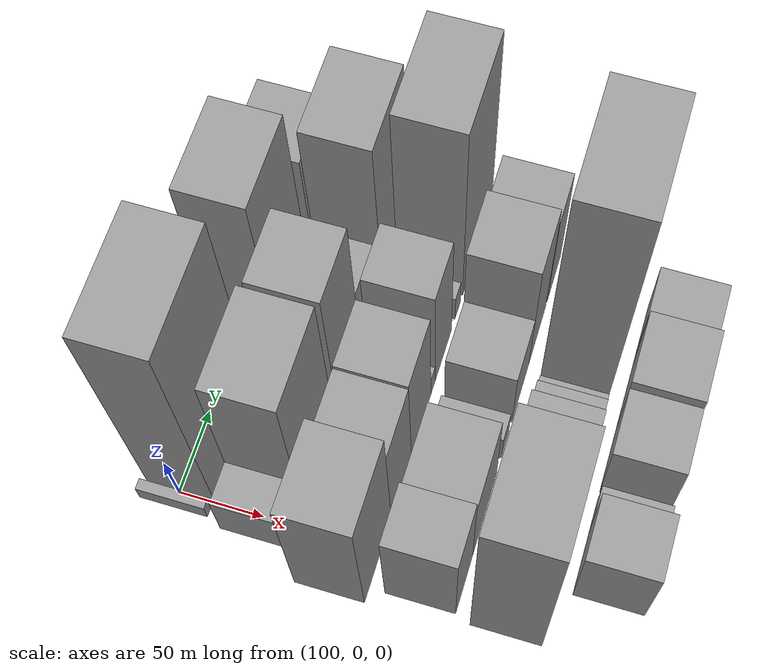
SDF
<sdf version="1.6">
 <world name="default">
  <model name="building_27">
   <static>1</static>
   <pose>100.0000 -5.7224 0 0.000000 0.000000 0.000000</pose>
   <link name="link">
    <pose>0 0 7.50 0 0 0</pose>
    <collision name="collision"><geometry><box><size>40.0000 6.3690 15.0000</size></box></geometry></collision>
    <visual name="visual">
     <cast_shadows>0</cast_shadows>
     <geometry><box><size>40.0000 6.3690 15.0000</size></box></geometry>
     <material>
      <script>
       <uri>model://grey_wall/materials/scripts</uri>
       <uri>model://grey_wall/materials/textures</uri>
       <name>vrc/grey_wall</name>
      </script>
     </material>
    </visual>
   </link>
  </model>
  <model name="building_28">
   <static>1</static>
   <pose>100.0000 36.5928 0 0.000000 0.000000 0.000000</pose>
   <link name="link">
    <pose>0 0 100.50 0 0 0</pose>
    <collision name="collision"><geometry><box><size>40.0000 70.2614 201.0000</size></box></geometry></collision>
    <visual name="visual">
     <cast_shadows>0</cast_shadows>
     <geometry><box><size>40.0000 70.2614 201.0000</size></box></geometry>
     <material>
      <script>
       <uri>model://grey_wall/materials/scripts</uri>
       <uri>model://grey_wall/materials/textures</uri>
       <name>vrc/grey_wall</name>
      </script>
     </material>
    </visual>
   </link>
  </model>
  <model name="building_29">
   <static>1</static>
   <pose>100.0000 81.3332 0 0.000000 0.000000 0.000000</pose>
   <link name="link">
    <pose>0 0 16.50 0 0 0</pose>
    <collision name="collision"><geometry><box><size>40.0000 19.2194 33.0000</size></box></geometry></collision>
    <visual name="visual">
     <cast_shadows>0</cast_shadows>
     <geometry><box><size>40.0000 19.2194 33.0000</size></box></geometry>
     <material>
      <script>
       <uri>model://grey_wall/materials/scripts</uri>
       <uri>model://grey_wall/materials/textures</uri>
       <name>vrc/grey_wall</name>
      </script>
     </material>
    </visual>
   </link>
  </model>
  <model name="building_30">
   <static>1</static>
   <pose>100.0000 103.2187 0 0.000000 0.000000 0.000000</pose>
   <link name="link">
    <pose>0 0 9.00 0 0 0</pose>
    <collision name="collision"><geometry><box><size>40.0000 8.5515 18.0000</size></box></geometry></collision>
    <visual name="visual">
     <cast_shadows>0</cast_shadows>
     <geometry><box><size>40.0000 8.5515 18.0000</size></box></geometry>
     <material>
      <script>
       <uri>model://grey_wall/materials/scripts</uri>
       <uri>model://grey_wall/materials/textures</uri>
       <name>vrc/grey_wall</name>
      </script>
     </material>
    </visual>
   </link>
  </model>
  <model name="building_31">
   <static>1</static>
   <pose>100.0000 135.7217 0 0.000000 0.000000 0.000000</pose>
   <link name="link">
    <pose>0 0 75.00 0 0 0</pose>
    <collision name="collision"><geometry><box><size>40.0000 56.4544 150.0000</size></box></geometry></collision>
    <visual name="visual">
     <cast_shadows>0</cast_shadows>
     <geometry><box><size>40.0000 56.4544 150.0000</size></box></geometry>
     <material>
      <script>
       <uri>model://grey_wall/materials/scripts</uri>
       <uri>model://grey_wall/materials/textures</uri>
       <name>vrc/grey_wall</name>
      </script>
     </material>
    </visual>
   </link>
  </model>
  <model name="building_32">
   <static>1</static>
   <pose>100.0000 195.4311 0 0.000000 0.000000 0.000000</pose>
   <link name="link">
    <pose>0 0 43.50 0 0 0</pose>
    <collision name="collision"><geometry><box><size>40.0000 44.9646 87.0000</size></box></geometry></collision>
    <visual name="visual">
     <cast_shadows>0</cast_shadows>
     <geometry><box><size>40.0000 44.9646 87.0000</size></box></geometry>
     <material>
      <script>
       <uri>model://grey_wall/materials/scripts</uri>
       <uri>model://grey_wall/materials/textures</uri>
       <name>vrc/grey_wall</name>
      </script>
     </material>
    </visual>
   </link>
  </model>
  <model name="building_74">
   <static>1</static>
   <pose>149.0000 -0.8128 0 0.000000 0.000000 0.000000</pose>
   <link name="link">
    <pose>0 0 22.50 0 0 0</pose>
    <collision name="collision"><geometry><box><size>40.0000 24.3933 45.0000</size></box></geometry></collision>
    <visual name="visual">
     <cast_shadows>0</cast_shadows>
     <geometry><box><size>40.0000 24.3933 45.0000</size></box></geometry>
     <material>
      <script>
       <uri>model://grey_wall/materials/scripts</uri>
       <uri>model://grey_wall/materials/textures</uri>
       <name>vrc/grey_wall</name>
      </script>
     </material>
    </visual>
   </link>
  </model>
  <model name="building_75">
   <static>1</static>
   <pose>149.0000 39.4271 0 0.000000 0.000000 0.000000</pose>
   <link name="link">
    <pose>0 0 75.00 0 0 0</pose>
    <collision name="collision"><geometry><box><size>40.0000 56.0865 150.0000</size></box></geometry></collision>
    <visual name="visual">
     <cast_shadows>0</cast_shadows>
     <geometry><box><size>40.0000 56.0865 150.0000</size></box></geometry>
     <material>
      <script>
       <uri>model://grey_wall/materials/scripts</uri>
       <uri>model://grey_wall/materials/textures</uri>
       <name>vrc/grey_wall</name>
      </script>
     </material>
    </visual>
   </link>
  </model>
  <model name="building_76">
   <static>1</static>
   <pose>149.0000 94.7992 0 0.000000 0.000000 0.000000</pose>
   <link name="link">
    <pose>0 0 70.50 0 0 0</pose>
    <collision name="collision"><geometry><box><size>40.0000 42.6575 141.0000</size></box></geometry></collision>
    <visual name="visual">
     <cast_shadows>0</cast_shadows>
     <geometry><box><size>40.0000 42.6575 141.0000</size></box></geometry>
     <material>
      <script>
       <uri>model://grey_wall/materials/scripts</uri>
       <uri>model://grey_wall/materials/textures</uri>
       <name>vrc/grey_wall</name>
      </script>
     </material>
    </visual>
   </link>
  </model>
  <model name="building_77">
   <static>1</static>
   <pose>149.0000 132.2302 0 0.000000 0.000000 0.000000</pose>
   <link name="link">
    <pose>0 0 31.50 0 0 0</pose>
    <collision name="collision"><geometry><box><size>40.0000 32.2046 63.0000</size></box></geometry></collision>
    <visual name="visual">
     <cast_shadows>0</cast_shadows>
     <geometry><box><size>40.0000 32.2046 63.0000</size></box></geometry>
     <material>
      <script>
       <uri>model://grey_wall/materials/scripts</uri>
       <uri>model://grey_wall/materials/textures</uri>
       <name>vrc/grey_wall</name>
      </script>
     </material>
    </visual>
   </link>
  </model>
  <model name="building_78">
   <static>1</static>
   <pose>149.0000 153.1834 0 0.000000 0.000000 0.000000</pose>
   <link name="link">
    <pose>0 0 10.50 0 0 0</pose>
    <collision name="collision"><geometry><box><size>40.0000 9.7017 21.0000</size></box></geometry></collision>
    <visual name="visual">
     <cast_shadows>0</cast_shadows>
     <geometry><box><size>40.0000 9.7017 21.0000</size></box></geometry>
     <material>
      <script>
       <uri>model://grey_wall/materials/scripts</uri>
       <uri>model://grey_wall/materials/textures</uri>
       <name>vrc/grey_wall</name>
      </script>
     </material>
    </visual>
   </link>
  </model>
  <model name="building_79">
   <static>1</static>
   <pose>149.0000 185.0868 0 0.000000 0.000000 0.000000</pose>
   <link name="link">
    <pose>0 0 73.50 0 0 0</pose>
    <collision name="collision"><geometry><box><size>40.0000 54.1052 147.0000</size></box></geometry></collision>
    <visual name="visual">
     <cast_shadows>0</cast_shadows>
     <geometry><box><size>40.0000 54.1052 147.0000</size></box></geometry>
     <material>
      <script>
       <uri>model://grey_wall/materials/scripts</uri>
       <uri>model://grey_wall/materials/textures</uri>
       <name>vrc/grey_wall</name>
      </script>
     </material>
    </visual>
   </link>
  </model>
  <model name="building_119">
   <static>1</static>
   <pose>198.0000 -5.2504 0 0.000000 0.000000 0.000000</pose>
   <link name="link">
    <pose>0 0 64.50 0 0 0</pose>
    <collision name="collision"><geometry><box><size>40.0000 49.3095 129.0000</size></box></geometry></collision>
    <visual name="visual">
     <cast_shadows>0</cast_shadows>
     <geometry><box><size>40.0000 49.3095 129.0000</size></box></geometry>
     <material>
      <script>
       <uri>model://grey_wall/materials/scripts</uri>
       <uri>model://grey_wall/materials/textures</uri>
       <name>vrc/grey_wall</name>
      </script>
     </material>
    </visual>
   </link>
  </model>
  <model name="building_120">
   <static>1</static>
   <pose>198.0000 38.4771 0 0.000000 0.000000 0.000000</pose>
   <link name="link">
    <pose>0 0 51.00 0 0 0</pose>
    <collision name="collision"><geometry><box><size>40.0000 38.1455 102.0000</size></box></geometry></collision>
    <visual name="visual">
     <cast_shadows>0</cast_shadows>
     <geometry><box><size>40.0000 38.1455 102.0000</size></box></geometry>
     <material>
      <script>
       <uri>model://grey_wall/materials/scripts</uri>
       <uri>model://grey_wall/materials/textures</uri>
       <name>vrc/grey_wall</name>
      </script>
     </material>
    </visual>
   </link>
  </model>
  <model name="building_121">
   <static>1</static>
   <pose>198.0000 76.6604 0 0.000000 0.000000 0.000000</pose>
   <link name="link">
    <pose>0 0 52.50 0 0 0</pose>
    <collision name="collision"><geometry><box><size>40.0000 38.2211 105.0000</size></box></geometry></collision>
    <visual name="visual">
     <cast_shadows>0</cast_shadows>
     <geometry><box><size>40.0000 38.2211 105.0000</size></box></geometry>
     <material>
      <script>
       <uri>model://grey_wall/materials/scripts</uri>
       <uri>model://grey_wall/materials/textures</uri>
       <name>vrc/grey_wall</name>
      </script>
     </material>
    </visual>
   </link>
  </model>
  <model name="building_122">
   <static>1</static>
   <pose>198.0000 100.1140 0 0.000000 0.000000 0.000000</pose>
   <link name="link">
    <pose>0 0 10.50 0 0 0</pose>
    <collision name="collision"><geometry><box><size>40.0000 8.6861 21.0000</size></box></geometry></collision>
    <visual name="visual">
     <cast_shadows>0</cast_shadows>
     <geometry><box><size>40.0000 8.6861 21.0000</size></box></geometry>
     <material>
      <script>
       <uri>model://grey_wall/materials/scripts</uri>
       <uri>model://grey_wall/materials/textures</uri>
       <name>vrc/grey_wall</name>
      </script>
     </material>
    </visual>
   </link>
  </model>
  <model name="building_123">
   <static>1</static>
   <pose>198.0000 121.4456 0 0.000000 0.000000 0.000000</pose>
   <link name="link">
    <pose>0 0 55.50 0 0 0</pose>
    <collision name="collision"><geometry><box><size>40.0000 33.9771 111.0000</size></box></geometry></collision>
    <visual name="visual">
     <cast_shadows>0</cast_shadows>
     <geometry><box><size>40.0000 33.9771 111.0000</size></box></geometry>
     <material>
      <script>
       <uri>model://grey_wall/materials/scripts</uri>
       <uri>model://grey_wall/materials/textures</uri>
       <name>vrc/grey_wall</name>
      </script>
     </material>
    </visual>
   </link>
  </model>
  <model name="building_124">
   <static>1</static>
   <pose>198.0000 151.0442 0 0.000000 0.000000 0.000000</pose>
   <link name="link">
    <pose>0 0 13.50 0 0 0</pose>
    <collision name="collision"><geometry><box><size>40.0000 11.2201 27.0000</size></box></geometry></collision>
    <visual name="visual">
     <cast_shadows>0</cast_shadows>
     <geometry><box><size>40.0000 11.2201 27.0000</size></box></geometry>
     <material>
      <script>
       <uri>model://grey_wall/materials/scripts</uri>
       <uri>model://grey_wall/materials/textures</uri>
       <name>vrc/grey_wall</name>
      </script>
     </material>
    </visual>
   </link>
  </model>
  <model name="building_125">
   <static>1</static>
   <pose>198.0000 193.1384 0 0.000000 0.000000 0.000000</pose>
   <link name="link">
    <pose>0 0 90.00 0 0 0</pose>
    <collision name="collision"><geometry><box><size>40.0000 62.9683 180.0000</size></box></geometry></collision>
    <visual name="visual">
     <cast_shadows>0</cast_shadows>
     <geometry><box><size>40.0000 62.9683 180.0000</size></box></geometry>
     <material>
      <script>
       <uri>model://grey_wall/materials/scripts</uri>
       <uri>model://grey_wall/materials/textures</uri>
       <name>vrc/grey_wall</name>
      </script>
     </material>
    </visual>
   </link>
  </model>
  <model name="building_170">
   <static>1</static>
   <pose>247.0000 -4.9164 0 0.000000 0.000000 0.000000</pose>
   <link name="link">
    <pose>0 0 48.00 0 0 0</pose>
    <collision name="collision"><geometry><box><size>40.0000 33.4849 96.0000</size></box></geometry></collision>
    <visual name="visual">
     <cast_shadows>0</cast_shadows>
     <geometry><box><size>40.0000 33.4849 96.0000</size></box></geometry>
     <material>
      <script>
       <uri>model://grey_wall/materials/scripts</uri>
       <uri>model://grey_wall/materials/textures</uri>
       <name>vrc/grey_wall</name>
      </script>
     </material>
    </visual>
   </link>
  </model>
  <model name="building_171">
   <static>1</static>
   <pose>247.0000 36.1118 0 0.000000 0.000000 0.000000</pose>
   <link name="link">
    <pose>0 0 42.00 0 0 0</pose>
    <collision name="collision"><geometry><box><size>40.0000 48.5715 84.0000</size></box></geometry></collision>
    <visual name="visual">
     <cast_shadows>0</cast_shadows>
     <geometry><box><size>40.0000 48.5715 84.0000</size></box></geometry>
     <material>
      <script>
       <uri>model://grey_wall/materials/scripts</uri>
       <uri>model://grey_wall/materials/textures</uri>
       <name>vrc/grey_wall</name>
      </script>
     </material>
    </visual>
   </link>
  </model>
  <model name="building_172">
   <static>1</static>
   <pose>247.0000 78.2502 0 0.000000 0.000000 0.000000</pose>
   <link name="link">
    <pose>0 0 15.00 0 0 0</pose>
    <collision name="collision"><geometry><box><size>40.0000 15.7053 30.0000</size></box></geometry></collision>
    <visual name="visual">
     <cast_shadows>0</cast_shadows>
     <geometry><box><size>40.0000 15.7053 30.0000</size></box></geometry>
     <material>
      <script>
       <uri>model://grey_wall/materials/scripts</uri>
       <uri>model://grey_wall/materials/textures</uri>
       <name>vrc/grey_wall</name>
      </script>
     </material>
    </visual>
   </link>
  </model>
  <model name="building_173">
   <static>1</static>
   <pose>247.0000 111.3381 0 0.000000 0.000000 0.000000</pose>
   <link name="link">
    <pose>0 0 31.50 0 0 0</pose>
    <collision name="collision"><geometry><box><size>40.0000 36.4706 63.0000</size></box></geometry></collision>
    <visual name="visual">
     <cast_shadows>0</cast_shadows>
     <geometry><box><size>40.0000 36.4706 63.0000</size></box></geometry>
     <material>
      <script>
       <uri>model://grey_wall/materials/scripts</uri>
       <uri>model://grey_wall/materials/textures</uri>
       <name>vrc/grey_wall</name>
      </script>
     </material>
    </visual>
   </link>
  </model>
  <model name="building_174">
   <static>1</static>
   <pose>247.0000 148.9045 0 0.000000 0.000000 0.000000</pose>
   <link name="link">
    <pose>0 0 60.00 0 0 0</pose>
    <collision name="collision"><geometry><box><size>40.0000 38.6622 120.0000</size></box></geometry></collision>
    <visual name="visual">
     <cast_shadows>0</cast_shadows>
     <geometry><box><size>40.0000 38.6622 120.0000</size></box></geometry>
     <material>
      <script>
       <uri>model://grey_wall/materials/scripts</uri>
       <uri>model://grey_wall/materials/textures</uri>
       <name>vrc/grey_wall</name>
      </script>
     </material>
    </visual>
   </link>
  </model>
  <model name="building_175">
   <static>1</static>
   <pose>247.0000 186.9844 0 0.000000 0.000000 0.000000</pose>
   <link name="link">
    <pose>0 0 49.50 0 0 0</pose>
    <collision name="collision"><geometry><box><size>40.0000 31.4977 99.0000</size></box></geometry></collision>
    <visual name="visual">
     <cast_shadows>0</cast_shadows>
     <geometry><box><size>40.0000 31.4977 99.0000</size></box></geometry>
     <material>
      <script>
       <uri>model://grey_wall/materials/scripts</uri>
       <uri>model://grey_wall/materials/textures</uri>
       <name>vrc/grey_wall</name>
      </script>
     </material>
    </visual>
   </link>
  </model>
  <model name="building_216">
   <static>1</static>
   <pose>296.0000 6.8372 0 0.000000 0.000000 0.000000</pose>
   <link name="link">
    <pose>0 0 87.00 0 0 0</pose>
    <collision name="collision"><geometry><box><size>40.0000 64.0710 174.0000</size></box></geometry></collision>
    <visual name="visual">
     <cast_shadows>0</cast_shadows>
     <geometry><box><size>40.0000 64.0710 174.0000</size></box></geometry>
     <material>
      <script>
       <uri>model://grey_wall/materials/scripts</uri>
       <uri>model://grey_wall/materials/textures</uri>
       <name>vrc/grey_wall</name>
      </script>
     </material>
    </visual>
   </link>
  </model>
  <model name="building_217">
   <static>1</static>
   <pose>296.0000 65.9209 0 0.000000 0.000000 0.000000</pose>
   <link name="link">
    <pose>0 0 37.50 0 0 0</pose>
    <collision name="collision"><geometry><box><size>40.0000 40.0963 75.0000</size></box></geometry></collision>
    <visual name="visual">
     <cast_shadows>0</cast_shadows>
     <geometry><box><size>40.0000 40.0963 75.0000</size></box></geometry>
     <material>
      <script>
       <uri>model://grey_wall/materials/scripts</uri>
       <uri>model://grey_wall/materials/textures</uri>
       <name>vrc/grey_wall</name>
      </script>
     </material>
    </visual>
   </link>
  </model>
  <model name="building_218">
   <static>1</static>
   <pose>296.0000 96.1782 0 0.000000 0.000000 0.000000</pose>
   <link name="link">
    <pose>0 0 19.50 0 0 0</pose>
    <collision name="collision"><geometry><box><size>40.0000 20.4184 39.0000</size></box></geometry></collision>
    <visual name="visual">
     <cast_shadows>0</cast_shadows>
     <geometry><box><size>40.0000 20.4184 39.0000</size></box></geometry>
     <material>
      <script>
       <uri>model://grey_wall/materials/scripts</uri>
       <uri>model://grey_wall/materials/textures</uri>
       <name>vrc/grey_wall</name>
      </script>
     </material>
    </visual>
   </link>
  </model>
  <model name="building_219">
   <static>1</static>
   <pose>296.0000 111.6264 0 0.000000 0.000000 0.000000</pose>
   <link name="link">
    <pose>0 0 10.50 0 0 0</pose>
    <collision name="collision"><geometry><box><size>40.0000 10.4780 21.0000</size></box></geometry></collision>
    <visual name="visual">
     <cast_shadows>0</cast_shadows>
     <geometry><box><size>40.0000 10.4780 21.0000</size></box></geometry>
     <material>
      <script>
       <uri>model://grey_wall/materials/scripts</uri>
       <uri>model://grey_wall/materials/textures</uri>
       <name>vrc/grey_wall</name>
      </script>
     </material>
    </visual>
   </link>
  </model>
  <model name="building_220">
   <static>1</static>
   <pose>296.0000 154.4420 0 0.000000 0.000000 0.000000</pose>
   <link name="link">
    <pose>0 0 109.50 0 0 0</pose>
    <collision name="collision"><geometry><box><size>40.0000 69.1531 219.0000</size></box></geometry></collision>
    <visual name="visual">
     <cast_shadows>0</cast_shadows>
     <geometry><box><size>40.0000 69.1531 219.0000</size></box></geometry>
     <material>
      <script>
       <uri>model://grey_wall/materials/scripts</uri>
       <uri>model://grey_wall/materials/textures</uri>
       <name>vrc/grey_wall</name>
      </script>
     </material>
    </visual>
   </link>
  </model>
  <model name="building_267">
   <static>1</static>
   <pose>345.0000 24.6200 0 0.000000 0.000000 0.000000</pose>
   <link name="link">
    <pose>0 0 36.00 0 0 0</pose>
    <collision name="collision"><geometry><box><size>40.0000 36.4842 72.0000</size></box></geometry></collision>
    <visual name="visual">
     <cast_shadows>0</cast_shadows>
     <geometry><box><size>40.0000 36.4842 72.0000</size></box></geometry>
     <material>
      <script>
       <uri>model://grey_wall/materials/scripts</uri>
       <uri>model://grey_wall/materials/textures</uri>
       <name>vrc/grey_wall</name>
      </script>
     </material>
    </visual>
   </link>
  </model>
  <model name="building_268">
   <static>1</static>
   <pose>345.0000 51.8306 0 0.000000 0.000000 0.000000</pose>
   <link name="link">
    <pose>0 0 15.00 0 0 0</pose>
    <collision name="collision"><geometry><box><size>40.0000 17.9370 30.0000</size></box></geometry></collision>
    <visual name="visual">
     <cast_shadows>0</cast_shadows>
     <geometry><box><size>40.0000 17.9370 30.0000</size></box></geometry>
     <material>
      <script>
       <uri>model://grey_wall/materials/scripts</uri>
       <uri>model://grey_wall/materials/textures</uri>
       <name>vrc/grey_wall</name>
      </script>
     </material>
    </visual>
   </link>
  </model>
  <model name="building_269">
   <static>1</static>
   <pose>345.0000 85.7711 0 0.000000 0.000000 0.000000</pose>
   <link name="link">
    <pose>0 0 33.00 0 0 0</pose>
    <collision name="collision"><geometry><box><size>40.0000 37.9439 66.0000</size></box></geometry></collision>
    <visual name="visual">
     <cast_shadows>0</cast_shadows>
     <geometry><box><size>40.0000 37.9439 66.0000</size></box></geometry>
     <material>
      <script>
       <uri>model://grey_wall/materials/scripts</uri>
       <uri>model://grey_wall/materials/textures</uri>
       <name>vrc/grey_wall</name>
      </script>
     </material>
    </visual>
   </link>
  </model>
  <model name="building_270">
   <static>1</static>
   <pose>345.0000 125.9469 0 0.000000 0.000000 0.000000</pose>
   <link name="link">
    <pose>0 0 37.50 0 0 0</pose>
    <collision name="collision"><geometry><box><size>40.0000 42.4077 75.0000</size></box></geometry></collision>
    <visual name="visual">
     <cast_shadows>0</cast_shadows>
     <geometry><box><size>40.0000 42.4077 75.0000</size></box></geometry>
     <material>
      <script>
       <uri>model://grey_wall/materials/scripts</uri>
       <uri>model://grey_wall/materials/textures</uri>
       <name>vrc/grey_wall</name>
      </script>
     </material>
    </visual>
   </link>
  </model>
  <model name="building_271">
   <static>1</static>
   <pose>345.0000 150.9322 0 0.000000 0.000000 0.000000</pose>
   <link name="link">
    <pose>0 0 9.00 0 0 0</pose>
    <collision name="collision"><geometry><box><size>40.0000 7.5628 18.0000</size></box></geometry></collision>
    <visual name="visual">
     <cast_shadows>0</cast_shadows>
     <geometry><box><size>40.0000 7.5628 18.0000</size></box></geometry>
     <material>
      <script>
       <uri>model://grey_wall/materials/scripts</uri>
       <uri>model://grey_wall/materials/textures</uri>
       <name>vrc/grey_wall</name>
      </script>
     </material>
    </visual>
   </link>
  </model>
  <model name="building_272">
   <static>1</static>
   <pose>345.0000 169.8907 0 0.000000 0.000000 0.000000</pose>
   <link name="link">
    <pose>0 0 27.00 0 0 0</pose>
    <collision name="collision"><geometry><box><size>40.0000 30.3542 54.0000</size></box></geometry></collision>
    <visual name="visual">
     <cast_shadows>0</cast_shadows>
     <geometry><box><size>40.0000 30.3542 54.0000</size></box></geometry>
     <material>
      <script>
       <uri>model://grey_wall/materials/scripts</uri>
       <uri>model://grey_wall/materials/textures</uri>
       <name>vrc/grey_wall</name>
      </script>
     </material>
    </visual>
   </link>
  </model>
 </world>
</sdf>
